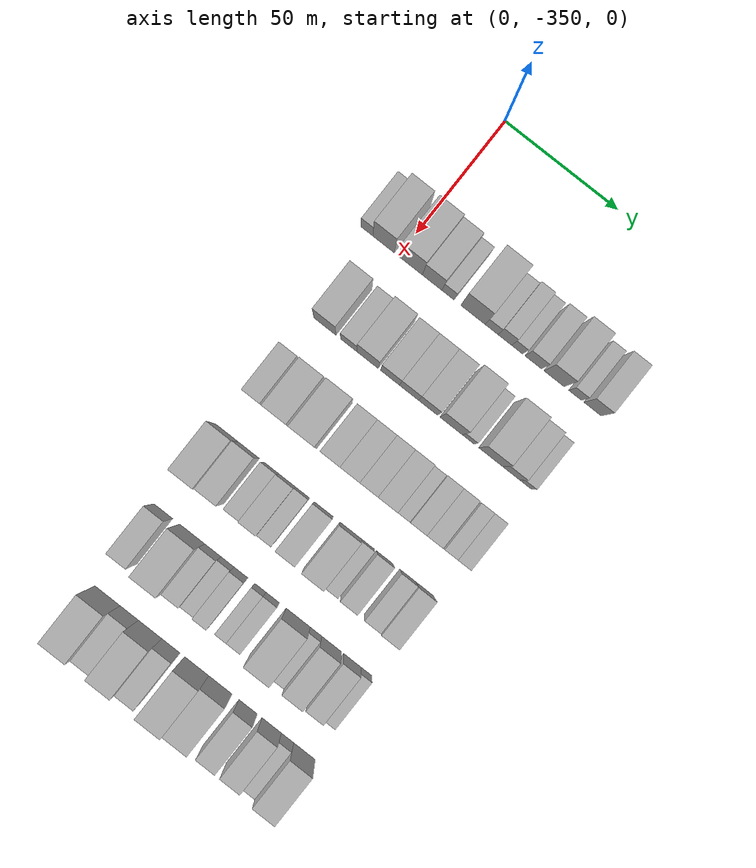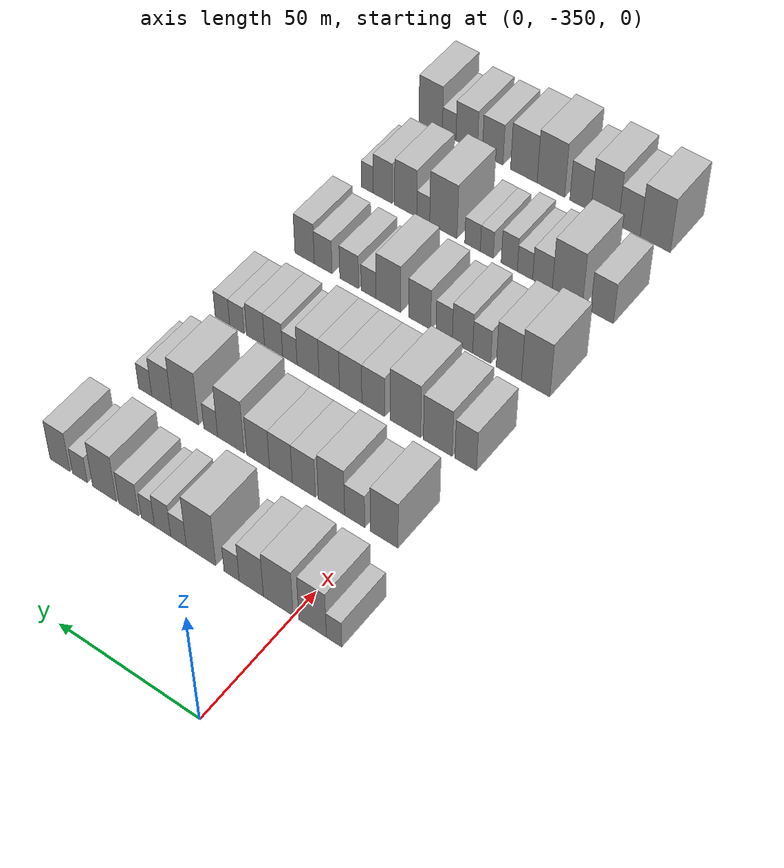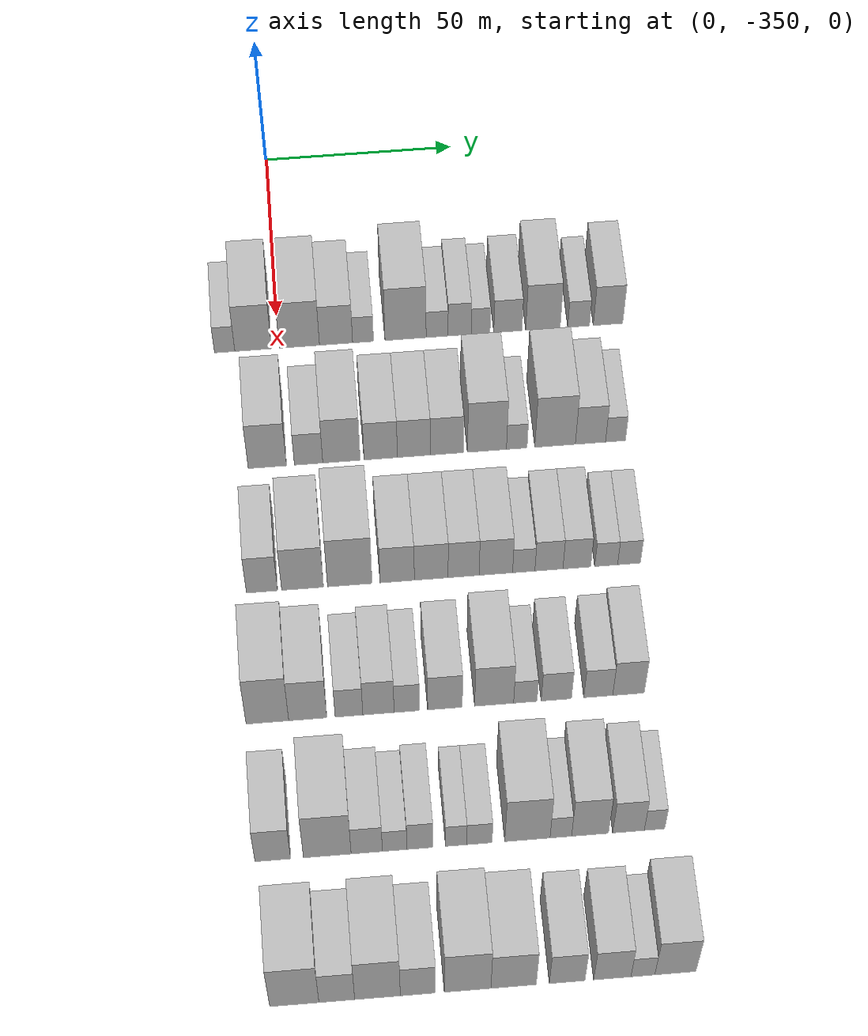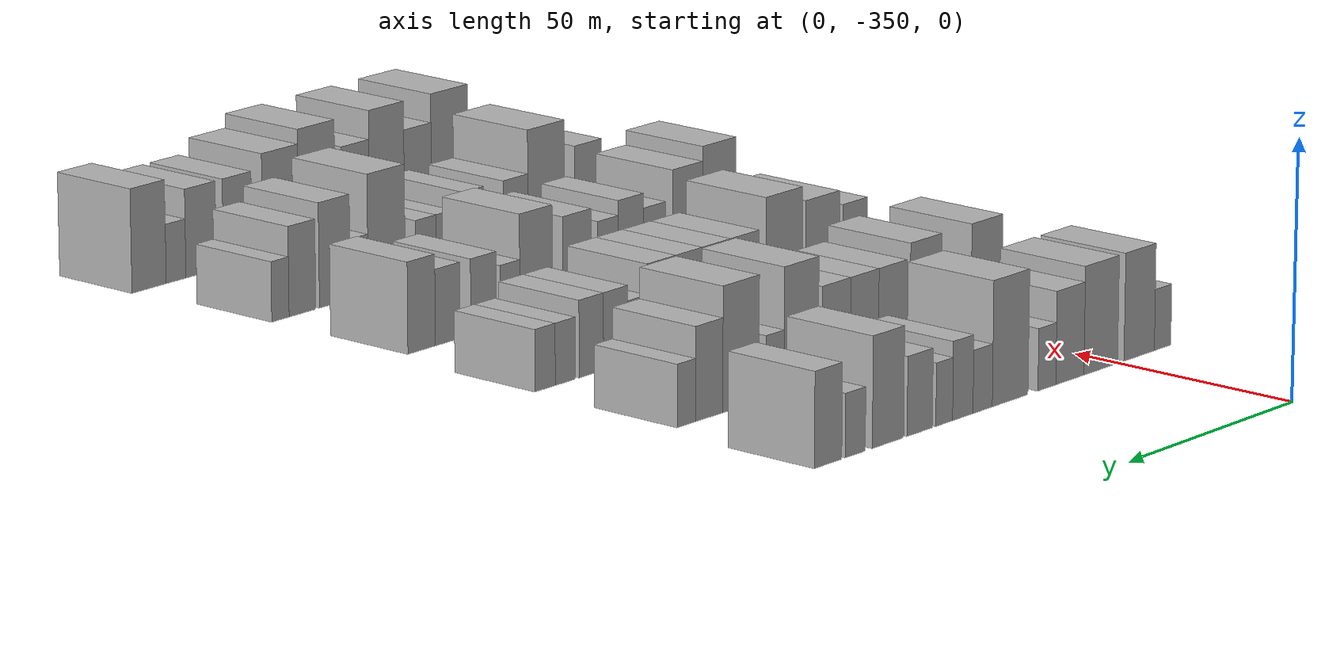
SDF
<sdf version="1.6">
 <world name="default">
  <model name="building_25">
   <static>1</static>
   <pose>50.0000 -363.9228 0 0.000000 0.000000 0.000000</pose>
   <link name="link">
    <pose>0 0 6.00 0 0 0</pose>
    <collision name="collision"><geometry><box><size>20.0000 5.2513 12.0000</size></box></geometry></collision>
    <visual name="visual">
     <cast_shadows>0</cast_shadows>
     <geometry><box><size>20.0000 5.2513 12.0000</size></box></geometry>
     <material>
      <script>
       <uri>model://HANNAS_wall/materials/scripts</uri>
       <uri>model://HANNAS_wall/materials/textures</uri>
       <name>vrc/HANNAS_wall</name>
      </script>
     </material>
    </visual>
   </link>
  </model>
  <model name="building_26">
   <static>1</static>
   <pose>50.0000 -356.5422 0 0.000000 0.000000 0.000000</pose>
   <link name="link">
    <pose>0 0 10.50 0 0 0</pose>
    <collision name="collision"><geometry><box><size>20.0000 9.5100 21.0000</size></box></geometry></collision>
    <visual name="visual">
     <cast_shadows>0</cast_shadows>
     <geometry><box><size>20.0000 9.5100 21.0000</size></box></geometry>
     <material>
      <script>
       <uri>model://HANNAS_wall/materials/scripts</uri>
       <uri>model://HANNAS_wall/materials/textures</uri>
       <name>vrc/HANNAS_wall</name>
      </script>
     </material>
    </visual>
   </link>
  </model>
  <model name="building_27">
   <static>1</static>
   <pose>50.0000 -344.5830 0 0.000000 0.000000 0.000000</pose>
   <link name="link">
    <pose>0 0 10.50 0 0 0</pose>
    <collision name="collision"><geometry><box><size>20.0000 10.4083 21.0000</size></box></geometry></collision>
    <visual name="visual">
     <cast_shadows>0</cast_shadows>
     <geometry><box><size>20.0000 10.4083 21.0000</size></box></geometry>
     <material>
      <script>
       <uri>model://HANNAS_wall/materials/scripts</uri>
       <uri>model://HANNAS_wall/materials/textures</uri>
       <name>vrc/HANNAS_wall</name>
      </script>
     </material>
    </visual>
   </link>
  </model>
  <model name="building_28">
   <static>1</static>
   <pose>50.0000 -335.0815 0 0.000000 0.000000 0.000000</pose>
   <link name="link">
    <pose>0 0 9.00 0 0 0</pose>
    <collision name="collision"><geometry><box><size>20.0000 8.5948 18.0000</size></box></geometry></collision>
    <visual name="visual">
     <cast_shadows>0</cast_shadows>
     <geometry><box><size>20.0000 8.5948 18.0000</size></box></geometry>
     <material>
      <script>
       <uri>model://HANNAS_wall/materials/scripts</uri>
       <uri>model://HANNAS_wall/materials/textures</uri>
       <name>vrc/HANNAS_wall</name>
      </script>
     </material>
    </visual>
   </link>
  </model>
  <model name="building_29">
   <static>1</static>
   <pose>50.0000 -328.0749 0 0.000000 0.000000 0.000000</pose>
   <link name="link">
    <pose>0 0 6.00 0 0 0</pose>
    <collision name="collision"><geometry><box><size>20.0000 5.4185 12.0000</size></box></geometry></collision>
    <visual name="visual">
     <cast_shadows>0</cast_shadows>
     <geometry><box><size>20.0000 5.4185 12.0000</size></box></geometry>
     <material>
      <script>
       <uri>model://HANNAS_wall/materials/scripts</uri>
       <uri>model://HANNAS_wall/materials/textures</uri>
       <name>vrc/HANNAS_wall</name>
      </script>
     </material>
    </visual>
   </link>
  </model>
  <model name="building_30">
   <static>1</static>
   <pose>50.0000 -317.0212 0 0.000000 0.000000 0.000000</pose>
   <link name="link">
    <pose>0 0 12.00 0 0 0</pose>
    <collision name="collision"><geometry><box><size>20.0000 10.6889 24.0000</size></box></geometry></collision>
    <visual name="visual">
     <cast_shadows>0</cast_shadows>
     <geometry><box><size>20.0000 10.6889 24.0000</size></box></geometry>
     <material>
      <script>
       <uri>model://HANNAS_wall/materials/scripts</uri>
       <uri>model://HANNAS_wall/materials/textures</uri>
       <name>vrc/HANNAS_wall</name>
      </script>
     </material>
    </visual>
   </link>
  </model>
  <model name="building_31">
   <static>1</static>
   <pose>50.0000 -308.8232 0 0.000000 0.000000 0.000000</pose>
   <link name="link">
    <pose>0 0 6.00 0 0 0</pose>
    <collision name="collision"><geometry><box><size>20.0000 5.7072 12.0000</size></box></geometry></collision>
    <visual name="visual">
     <cast_shadows>0</cast_shadows>
     <geometry><box><size>20.0000 5.7072 12.0000</size></box></geometry>
     <material>
      <script>
       <uri>model://HANNAS_wall/materials/scripts</uri>
       <uri>model://HANNAS_wall/materials/textures</uri>
       <name>vrc/HANNAS_wall</name>
      </script>
     </material>
    </visual>
   </link>
  </model>
  <model name="building_32">
   <static>1</static>
   <pose>50.0000 -302.9643 0 0.000000 0.000000 0.000000</pose>
   <link name="link">
    <pose>0 0 7.50 0 0 0</pose>
    <collision name="collision"><geometry><box><size>20.0000 6.0104 15.0000</size></box></geometry></collision>
    <visual name="visual">
     <cast_shadows>0</cast_shadows>
     <geometry><box><size>20.0000 6.0104 15.0000</size></box></geometry>
     <material>
      <script>
       <uri>model://HANNAS_wall/materials/scripts</uri>
       <uri>model://HANNAS_wall/materials/textures</uri>
       <name>vrc/HANNAS_wall</name>
      </script>
     </material>
    </visual>
   </link>
  </model>
  <model name="building_33">
   <static>1</static>
   <pose>50.0000 -297.5027 0 0.000000 0.000000 0.000000</pose>
   <link name="link">
    <pose>0 0 6.00 0 0 0</pose>
    <collision name="collision"><geometry><box><size>20.0000 4.9128 12.0000</size></box></geometry></collision>
    <visual name="visual">
     <cast_shadows>0</cast_shadows>
     <geometry><box><size>20.0000 4.9128 12.0000</size></box></geometry>
     <material>
      <script>
       <uri>model://HANNAS_wall/materials/scripts</uri>
       <uri>model://HANNAS_wall/materials/textures</uri>
       <name>vrc/HANNAS_wall</name>
      </script>
     </material>
    </visual>
   </link>
  </model>
  <model name="building_34">
   <static>1</static>
   <pose>50.0000 -290.3812 0 0.000000 0.000000 0.000000</pose>
   <link name="link">
    <pose>0 0 7.50 0 0 0</pose>
    <collision name="collision"><geometry><box><size>20.0000 7.3303 15.0000</size></box></geometry></collision>
    <visual name="visual">
     <cast_shadows>0</cast_shadows>
     <geometry><box><size>20.0000 7.3303 15.0000</size></box></geometry>
     <material>
      <script>
       <uri>model://HANNAS_wall/materials/scripts</uri>
       <uri>model://HANNAS_wall/materials/textures</uri>
       <name>vrc/HANNAS_wall</name>
      </script>
     </material>
    </visual>
   </link>
  </model>
  <model name="building_35">
   <static>1</static>
   <pose>50.0000 -281.2286 0 0.000000 0.000000 0.000000</pose>
   <link name="link">
    <pose>0 0 10.50 0 0 0</pose>
    <collision name="collision"><geometry><box><size>20.0000 8.9748 21.0000</size></box></geometry></collision>
    <visual name="visual">
     <cast_shadows>0</cast_shadows>
     <geometry><box><size>20.0000 8.9748 21.0000</size></box></geometry>
     <material>
      <script>
       <uri>model://HANNAS_wall/materials/scripts</uri>
       <uri>model://HANNAS_wall/materials/textures</uri>
       <name>vrc/HANNAS_wall</name>
      </script>
     </material>
    </visual>
   </link>
  </model>
  <model name="building_36">
   <static>1</static>
   <pose>50.0000 -271.9024 0 0.000000 0.000000 0.000000</pose>
   <link name="link">
    <pose>0 0 6.00 0 0 0</pose>
    <collision name="collision"><geometry><box><size>20.0000 5.6775 12.0000</size></box></geometry></collision>
    <visual name="visual">
     <cast_shadows>0</cast_shadows>
     <geometry><box><size>20.0000 5.6775 12.0000</size></box></geometry>
     <material>
      <script>
       <uri>model://HANNAS_wall/materials/scripts</uri>
       <uri>model://HANNAS_wall/materials/textures</uri>
       <name>vrc/HANNAS_wall</name>
      </script>
     </material>
    </visual>
   </link>
  </model>
  <model name="building_37">
   <static>1</static>
   <pose>50.0000 -264.2198 0 0.000000 0.000000 0.000000</pose>
   <link name="link">
    <pose>0 0 9.00 0 0 0</pose>
    <collision name="collision"><geometry><box><size>20.0000 7.6877 18.0000</size></box></geometry></collision>
    <visual name="visual">
     <cast_shadows>0</cast_shadows>
     <geometry><box><size>20.0000 7.6877 18.0000</size></box></geometry>
     <material>
      <script>
       <uri>model://HANNAS_wall/materials/scripts</uri>
       <uri>model://HANNAS_wall/materials/textures</uri>
       <name>vrc/HANNAS_wall</name>
      </script>
     </material>
    </visual>
   </link>
  </model>
  <model name="building_149">
   <static>1</static>
   <pose>85.0000 -354.7512 0 0.000000 0.000000 0.000000</pose>
   <link name="link">
    <pose>0 0 10.50 0 0 0</pose>
    <collision name="collision"><geometry><box><size>20.0000 9.6623 21.0000</size></box></geometry></collision>
    <visual name="visual">
     <cast_shadows>0</cast_shadows>
     <geometry><box><size>20.0000 9.6623 21.0000</size></box></geometry>
     <material>
      <script>
       <uri>model://HANNAS_wall/materials/scripts</uri>
       <uri>model://HANNAS_wall/materials/textures</uri>
       <name>vrc/HANNAS_wall</name>
      </script>
     </material>
    </visual>
   </link>
  </model>
  <model name="building_150">
   <static>1</static>
   <pose>85.0000 -344.3441 0 0.000000 0.000000 0.000000</pose>
   <link name="link">
    <pose>0 0 7.50 0 0 0</pose>
    <collision name="collision"><geometry><box><size>20.0000 7.1519 15.0000</size></box></geometry></collision>
    <visual name="visual">
     <cast_shadows>0</cast_shadows>
     <geometry><box><size>20.0000 7.1519 15.0000</size></box></geometry>
     <material>
      <script>
       <uri>model://HANNAS_wall/materials/scripts</uri>
       <uri>model://HANNAS_wall/materials/textures</uri>
       <name>vrc/HANNAS_wall</name>
      </script>
     </material>
    </visual>
   </link>
  </model>
  <model name="building_151">
   <static>1</static>
   <pose>85.0000 -336.0399 0 0.000000 0.000000 0.000000</pose>
   <link name="link">
    <pose>0 0 10.50 0 0 0</pose>
    <collision name="collision"><geometry><box><size>20.0000 9.4566 21.0000</size></box></geometry></collision>
    <visual name="visual">
     <cast_shadows>0</cast_shadows>
     <geometry><box><size>20.0000 9.4566 21.0000</size></box></geometry>
     <material>
      <script>
       <uri>model://HANNAS_wall/materials/scripts</uri>
       <uri>model://HANNAS_wall/materials/textures</uri>
       <name>vrc/HANNAS_wall</name>
      </script>
     </material>
    </visual>
   </link>
  </model>
  <model name="building_152">
   <static>1</static>
   <pose>85.0000 -326.0976 0 0.000000 0.000000 0.000000</pose>
   <link name="link">
    <pose>0 0 9.00 0 0 0</pose>
    <collision name="collision"><geometry><box><size>20.0000 8.4279 18.0000</size></box></geometry></collision>
    <visual name="visual">
     <cast_shadows>0</cast_shadows>
     <geometry><box><size>20.0000 8.4279 18.0000</size></box></geometry>
     <material>
      <script>
       <uri>model://HANNAS_wall/materials/scripts</uri>
       <uri>model://HANNAS_wall/materials/textures</uri>
       <name>vrc/HANNAS_wall</name>
      </script>
     </material>
    </visual>
   </link>
  </model>
  <model name="building_153">
   <static>1</static>
   <pose>85.0000 -317.7105 0 0.000000 0.000000 0.000000</pose>
   <link name="link">
    <pose>0 0 9.00 0 0 0</pose>
    <collision name="collision"><geometry><box><size>20.0000 8.3462 18.0000</size></box></geometry></collision>
    <visual name="visual">
     <cast_shadows>0</cast_shadows>
     <geometry><box><size>20.0000 8.3462 18.0000</size></box></geometry>
     <material>
      <script>
       <uri>model://HANNAS_wall/materials/scripts</uri>
       <uri>model://HANNAS_wall/materials/textures</uri>
       <name>vrc/HANNAS_wall</name>
      </script>
     </material>
    </visual>
   </link>
  </model>
  <model name="building_154">
   <static>1</static>
   <pose>85.0000 -309.3251 0 0.000000 0.000000 0.000000</pose>
   <link name="link">
    <pose>0 0 9.00 0 0 0</pose>
    <collision name="collision"><geometry><box><size>20.0000 8.4247 18.0000</size></box></geometry></collision>
    <visual name="visual">
     <cast_shadows>0</cast_shadows>
     <geometry><box><size>20.0000 8.4247 18.0000</size></box></geometry>
     <material>
      <script>
       <uri>model://HANNAS_wall/materials/scripts</uri>
       <uri>model://HANNAS_wall/materials/textures</uri>
       <name>vrc/HANNAS_wall</name>
      </script>
     </material>
    </visual>
   </link>
  </model>
  <model name="building_155">
   <static>1</static>
   <pose>85.0000 -299.1536 0 0.000000 0.000000 0.000000</pose>
   <link name="link">
    <pose>0 0 12.00 0 0 0</pose>
    <collision name="collision"><geometry><box><size>20.0000 9.9182 24.0000</size></box></geometry></collision>
    <visual name="visual">
     <cast_shadows>0</cast_shadows>
     <geometry><box><size>20.0000 9.9182 24.0000</size></box></geometry>
     <material>
      <script>
       <uri>model://HANNAS_wall/materials/scripts</uri>
       <uri>model://HANNAS_wall/materials/textures</uri>
       <name>vrc/HANNAS_wall</name>
      </script>
     </material>
    </visual>
   </link>
  </model>
  <model name="building_156">
   <static>1</static>
   <pose>85.0000 -291.5735 0 0.000000 0.000000 0.000000</pose>
   <link name="link">
    <pose>0 0 6.00 0 0 0</pose>
    <collision name="collision"><geometry><box><size>20.0000 5.2421 12.0000</size></box></geometry></collision>
    <visual name="visual">
     <cast_shadows>0</cast_shadows>
     <geometry><box><size>20.0000 5.2421 12.0000</size></box></geometry>
     <material>
      <script>
       <uri>model://HANNAS_wall/materials/scripts</uri>
       <uri>model://HANNAS_wall/materials/textures</uri>
       <name>vrc/HANNAS_wall</name>
      </script>
     </material>
    </visual>
   </link>
  </model>
  <model name="building_157">
   <static>1</static>
   <pose>85.0000 -281.7998 0 0.000000 0.000000 0.000000</pose>
   <link name="link">
    <pose>0 0 12.00 0 0 0</pose>
    <collision name="collision"><geometry><box><size>20.0000 10.3053 24.0000</size></box></geometry></collision>
    <visual name="visual">
     <cast_shadows>0</cast_shadows>
     <geometry><box><size>20.0000 10.3053 24.0000</size></box></geometry>
     <material>
      <script>
       <uri>model://HANNAS_wall/materials/scripts</uri>
       <uri>model://HANNAS_wall/materials/textures</uri>
       <name>vrc/HANNAS_wall</name>
      </script>
     </material>
    </visual>
   </link>
  </model>
  <model name="building_158">
   <static>1</static>
   <pose>85.0000 -272.7995 0 0.000000 0.000000 0.000000</pose>
   <link name="link">
    <pose>0 0 9.00 0 0 0</pose>
    <collision name="collision"><geometry><box><size>20.0000 7.6952 18.0000</size></box></geometry></collision>
    <visual name="visual">
     <cast_shadows>0</cast_shadows>
     <geometry><box><size>20.0000 7.6952 18.0000</size></box></geometry>
     <material>
      <script>
       <uri>model://HANNAS_wall/materials/scripts</uri>
       <uri>model://HANNAS_wall/materials/textures</uri>
       <name>vrc/HANNAS_wall</name>
      </script>
     </material>
    </visual>
   </link>
  </model>
  <model name="building_159">
   <static>1</static>
   <pose>85.0000 -266.4081 0 0.000000 0.000000 0.000000</pose>
   <link name="link">
    <pose>0 0 6.00 0 0 0</pose>
    <collision name="collision"><geometry><box><size>20.0000 5.0877 12.0000</size></box></geometry></collision>
    <visual name="visual">
     <cast_shadows>0</cast_shadows>
     <geometry><box><size>20.0000 5.0877 12.0000</size></box></geometry>
     <material>
      <script>
       <uri>model://HANNAS_wall/materials/scripts</uri>
       <uri>model://HANNAS_wall/materials/textures</uri>
       <name>vrc/HANNAS_wall</name>
      </script>
     </material>
    </visual>
   </link>
  </model>
  <model name="building_278">
   <static>1</static>
   <pose>120.0000 -357.9527 0 0.000000 0.000000 0.000000</pose>
   <link name="link">
    <pose>0 0 9.00 0 0 0</pose>
    <collision name="collision"><geometry><box><size>20.0000 7.6664 18.0000</size></box></geometry></collision>
    <visual name="visual">
     <cast_shadows>0</cast_shadows>
     <geometry><box><size>20.0000 7.6664 18.0000</size></box></geometry>
     <material>
      <script>
       <uri>model://HANNAS_wall/materials/scripts</uri>
       <uri>model://HANNAS_wall/materials/textures</uri>
       <name>vrc/HANNAS_wall</name>
      </script>
     </material>
    </visual>
   </link>
  </model>
  <model name="building_279">
   <static>1</static>
   <pose>120.0000 -347.9741 0 0.000000 0.000000 0.000000</pose>
   <link name="link">
    <pose>0 0 10.50 0 0 0</pose>
    <collision name="collision"><geometry><box><size>20.0000 10.2909 21.0000</size></box></geometry></collision>
    <visual name="visual">
     <cast_shadows>0</cast_shadows>
     <geometry><box><size>20.0000 10.2909 21.0000</size></box></geometry>
     <material>
      <script>
       <uri>model://HANNAS_wall/materials/scripts</uri>
       <uri>model://HANNAS_wall/materials/textures</uri>
       <name>vrc/HANNAS_wall</name>
      </script>
     </material>
    </visual>
   </link>
  </model>
  <model name="building_280">
   <static>1</static>
   <pose>120.0000 -336.3413 0 0.000000 0.000000 0.000000</pose>
   <link name="link">
    <pose>0 0 12.00 0 0 0</pose>
    <collision name="collision"><geometry><box><size>20.0000 10.9747 24.0000</size></box></geometry></collision>
    <visual name="visual">
     <cast_shadows>0</cast_shadows>
     <geometry><box><size>20.0000 10.9747 24.0000</size></box></geometry>
     <material>
      <script>
       <uri>model://HANNAS_wall/materials/scripts</uri>
       <uri>model://HANNAS_wall/materials/textures</uri>
       <name>vrc/HANNAS_wall</name>
      </script>
     </material>
    </visual>
   </link>
  </model>
  <model name="building_281">
   <static>1</static>
   <pose>120.0000 -324.6284 0 0.000000 0.000000 0.000000</pose>
   <link name="link">
    <pose>0 0 9.00 0 0 0</pose>
    <collision name="collision"><geometry><box><size>20.0000 8.4511 18.0000</size></box></geometry></collision>
    <visual name="visual">
     <cast_shadows>0</cast_shadows>
     <geometry><box><size>20.0000 8.4511 18.0000</size></box></geometry>
     <material>
      <script>
       <uri>model://HANNAS_wall/materials/scripts</uri>
       <uri>model://HANNAS_wall/materials/textures</uri>
       <name>vrc/HANNAS_wall</name>
      </script>
     </material>
    </visual>
   </link>
  </model>
  <model name="building_282">
   <static>1</static>
   <pose>120.0000 -316.2403 0 0.000000 0.000000 0.000000</pose>
   <link name="link">
    <pose>0 0 9.00 0 0 0</pose>
    <collision name="collision"><geometry><box><size>20.0000 8.3251 18.0000</size></box></geometry></collision>
    <visual name="visual">
     <cast_shadows>0</cast_shadows>
     <geometry><box><size>20.0000 8.3251 18.0000</size></box></geometry>
     <material>
      <script>
       <uri>model://HANNAS_wall/materials/scripts</uri>
       <uri>model://HANNAS_wall/materials/textures</uri>
       <name>vrc/HANNAS_wall</name>
      </script>
     </material>
    </visual>
   </link>
  </model>
  <model name="building_283">
   <static>1</static>
   <pose>120.0000 -308.2414 0 0.000000 0.000000 0.000000</pose>
   <link name="link">
    <pose>0 0 9.00 0 0 0</pose>
    <collision name="collision"><geometry><box><size>20.0000 7.6728 18.0000</size></box></geometry></collision>
    <visual name="visual">
     <cast_shadows>0</cast_shadows>
     <geometry><box><size>20.0000 7.6728 18.0000</size></box></geometry>
     <material>
      <script>
       <uri>model://HANNAS_wall/materials/scripts</uri>
       <uri>model://HANNAS_wall/materials/textures</uri>
       <name>vrc/HANNAS_wall</name>
      </script>
     </material>
    </visual>
   </link>
  </model>
  <model name="building_284">
   <static>1</static>
   <pose>120.0000 -300.2578 0 0.000000 0.000000 0.000000</pose>
   <link name="link">
    <pose>0 0 9.00 0 0 0</pose>
    <collision name="collision"><geometry><box><size>20.0000 8.2945 18.0000</size></box></geometry></collision>
    <visual name="visual">
     <cast_shadows>0</cast_shadows>
     <geometry><box><size>20.0000 8.2945 18.0000</size></box></geometry>
     <material>
      <script>
       <uri>model://HANNAS_wall/materials/scripts</uri>
       <uri>model://HANNAS_wall/materials/textures</uri>
       <name>vrc/HANNAS_wall</name>
      </script>
     </material>
    </visual>
   </link>
  </model>
  <model name="building_285">
   <static>1</static>
   <pose>120.0000 -293.3405 0 0.000000 0.000000 0.000000</pose>
   <link name="link">
    <pose>0 0 6.00 0 0 0</pose>
    <collision name="collision"><geometry><box><size>20.0000 5.5401 12.0000</size></box></geometry></collision>
    <visual name="visual">
     <cast_shadows>0</cast_shadows>
     <geometry><box><size>20.0000 5.5401 12.0000</size></box></geometry>
     <material>
      <script>
       <uri>model://HANNAS_wall/materials/scripts</uri>
       <uri>model://HANNAS_wall/materials/textures</uri>
       <name>vrc/HANNAS_wall</name>
      </script>
     </material>
    </visual>
   </link>
  </model>
  <model name="building_286">
   <static>1</static>
   <pose>120.0000 -287.0924 0 0.000000 0.000000 0.000000</pose>
   <link name="link">
    <pose>0 0 7.50 0 0 0</pose>
    <collision name="collision"><geometry><box><size>20.0000 6.9560 15.0000</size></box></geometry></collision>
    <visual name="visual">
     <cast_shadows>0</cast_shadows>
     <geometry><box><size>20.0000 6.9560 15.0000</size></box></geometry>
     <material>
      <script>
       <uri>model://HANNAS_wall/materials/scripts</uri>
       <uri>model://HANNAS_wall/materials/textures</uri>
       <name>vrc/HANNAS_wall</name>
      </script>
     </material>
    </visual>
   </link>
  </model>
  <model name="building_287">
   <static>1</static>
   <pose>120.0000 -280.1640 0 0.000000 0.000000 0.000000</pose>
   <link name="link">
    <pose>0 0 7.50 0 0 0</pose>
    <collision name="collision"><geometry><box><size>20.0000 6.9010 15.0000</size></box></geometry></collision>
    <visual name="visual">
     <cast_shadows>0</cast_shadows>
     <geometry><box><size>20.0000 6.9010 15.0000</size></box></geometry>
     <material>
      <script>
       <uri>model://HANNAS_wall/materials/scripts</uri>
       <uri>model://HANNAS_wall/materials/textures</uri>
       <name>vrc/HANNAS_wall</name>
      </script>
     </material>
    </visual>
   </link>
  </model>
  <model name="building_288">
   <static>1</static>
   <pose>120.0000 -272.8723 0 0.000000 0.000000 0.000000</pose>
   <link name="link">
    <pose>0 0 6.00 0 0 0</pose>
    <collision name="collision"><geometry><box><size>20.0000 5.6824 12.0000</size></box></geometry></collision>
    <visual name="visual">
     <cast_shadows>0</cast_shadows>
     <geometry><box><size>20.0000 5.6824 12.0000</size></box></geometry>
     <material>
      <script>
       <uri>model://HANNAS_wall/materials/scripts</uri>
       <uri>model://HANNAS_wall/materials/textures</uri>
       <name>vrc/HANNAS_wall</name>
      </script>
     </material>
    </visual>
   </link>
  </model>
  <model name="building_289">
   <static>1</static>
   <pose>120.0000 -267.1996 0 0.000000 0.000000 0.000000</pose>
   <link name="link">
    <pose>0 0 6.00 0 0 0</pose>
    <collision name="collision"><geometry><box><size>20.0000 5.6628 12.0000</size></box></geometry></collision>
    <visual name="visual">
     <cast_shadows>0</cast_shadows>
     <geometry><box><size>20.0000 5.6628 12.0000</size></box></geometry>
     <material>
      <script>
       <uri>model://HANNAS_wall/materials/scripts</uri>
       <uri>model://HANNAS_wall/materials/textures</uri>
       <name>vrc/HANNAS_wall</name>
      </script>
     </material>
    </visual>
   </link>
  </model>
  <model name="building_403">
   <static>1</static>
   <pose>155.0000 -358.5116 0 0.000000 0.000000 0.000000</pose>
   <link name="link">
    <pose>0 0 12.00 0 0 0</pose>
    <collision name="collision"><geometry><box><size>20.0000 10.1989 24.0000</size></box></geometry></collision>
    <visual name="visual">
     <cast_shadows>0</cast_shadows>
     <geometry><box><size>20.0000 10.1989 24.0000</size></box></geometry>
     <material>
      <script>
       <uri>model://HANNAS_wall/materials/scripts</uri>
       <uri>model://HANNAS_wall/materials/textures</uri>
       <name>vrc/HANNAS_wall</name>
      </script>
     </material>
    </visual>
   </link>
  </model>
  <model name="building_404">
   <static>1</static>
   <pose>155.0000 -348.8406 0 0.000000 0.000000 0.000000</pose>
   <link name="link">
    <pose>0 0 10.50 0 0 0</pose>
    <collision name="collision"><geometry><box><size>20.0000 9.1431 21.0000</size></box></geometry></collision>
    <visual name="visual">
     <cast_shadows>0</cast_shadows>
     <geometry><box><size>20.0000 9.1431 21.0000</size></box></geometry>
     <material>
      <script>
       <uri>model://HANNAS_wall/materials/scripts</uri>
       <uri>model://HANNAS_wall/materials/textures</uri>
       <name>vrc/HANNAS_wall</name>
      </script>
     </material>
    </visual>
   </link>
  </model>
  <model name="building_405">
   <static>1</static>
   <pose>155.0000 -338.9535 0 0.000000 0.000000 0.000000</pose>
   <link name="link">
    <pose>0 0 7.50 0 0 0</pose>
    <collision name="collision"><geometry><box><size>20.0000 6.6310 15.0000</size></box></geometry></collision>
    <visual name="visual">
     <cast_shadows>0</cast_shadows>
     <geometry><box><size>20.0000 6.6310 15.0000</size></box></geometry>
     <material>
      <script>
       <uri>model://HANNAS_wall/materials/scripts</uri>
       <uri>model://HANNAS_wall/materials/textures</uri>
       <name>vrc/HANNAS_wall</name>
      </script>
     </material>
    </visual>
   </link>
  </model>
  <model name="building_406">
   <static>1</static>
   <pose>155.0000 -331.8794 0 0.000000 0.000000 0.000000</pose>
   <link name="link">
    <pose>0 0 9.00 0 0 0</pose>
    <collision name="collision"><geometry><box><size>20.0000 7.5173 18.0000</size></box></geometry></collision>
    <visual name="visual">
     <cast_shadows>0</cast_shadows>
     <geometry><box><size>20.0000 7.5173 18.0000</size></box></geometry>
     <material>
      <script>
       <uri>model://HANNAS_wall/materials/scripts</uri>
       <uri>model://HANNAS_wall/materials/textures</uri>
       <name>vrc/HANNAS_wall</name>
      </script>
     </material>
    </visual>
   </link>
  </model>
  <model name="building_407">
   <static>1</static>
   <pose>155.0000 -325.0801 0 0.000000 0.000000 0.000000</pose>
   <link name="link">
    <pose>0 0 7.50 0 0 0</pose>
    <collision name="collision"><geometry><box><size>20.0000 6.0812 15.0000</size></box></geometry></collision>
    <visual name="visual">
     <cast_shadows>0</cast_shadows>
     <geometry><box><size>20.0000 6.0812 15.0000</size></box></geometry>
     <material>
      <script>
       <uri>model://HANNAS_wall/materials/scripts</uri>
       <uri>model://HANNAS_wall/materials/textures</uri>
       <name>vrc/HANNAS_wall</name>
      </script>
     </material>
    </visual>
   </link>
  </model>
  <model name="building_408">
   <static>1</static>
   <pose>155.0000 -315.8828 0 0.000000 0.000000 0.000000</pose>
   <link name="link">
    <pose>0 0 9.00 0 0 0</pose>
    <collision name="collision"><geometry><box><size>20.0000 8.3134 18.0000</size></box></geometry></collision>
    <visual name="visual">
     <cast_shadows>0</cast_shadows>
     <geometry><box><size>20.0000 8.3134 18.0000</size></box></geometry>
     <material>
      <script>
       <uri>model://HANNAS_wall/materials/scripts</uri>
       <uri>model://HANNAS_wall/materials/textures</uri>
       <name>vrc/HANNAS_wall</name>
      </script>
     </material>
    </visual>
   </link>
  </model>
  <model name="building_409">
   <static>1</static>
   <pose>155.0000 -304.0315 0 0.000000 0.000000 0.000000</pose>
   <link name="link">
    <pose>0 0 10.50 0 0 0</pose>
    <collision name="collision"><geometry><box><size>20.0000 9.3893 21.0000</size></box></geometry></collision>
    <visual name="visual">
     <cast_shadows>0</cast_shadows>
     <geometry><box><size>20.0000 9.3893 21.0000</size></box></geometry>
     <material>
      <script>
       <uri>model://HANNAS_wall/materials/scripts</uri>
       <uri>model://HANNAS_wall/materials/textures</uri>
       <name>vrc/HANNAS_wall</name>
      </script>
     </material>
    </visual>
   </link>
  </model>
  <model name="building_410">
   <static>1</static>
   <pose>155.0000 -296.5074 0 0.000000 0.000000 0.000000</pose>
   <link name="link">
    <pose>0 0 6.00 0 0 0</pose>
    <collision name="collision"><geometry><box><size>20.0000 5.6588 12.0000</size></box></geometry></collision>
    <visual name="visual">
     <cast_shadows>0</cast_shadows>
     <geometry><box><size>20.0000 5.6588 12.0000</size></box></geometry>
     <material>
      <script>
       <uri>model://HANNAS_wall/materials/scripts</uri>
       <uri>model://HANNAS_wall/materials/textures</uri>
       <name>vrc/HANNAS_wall</name>
      </script>
     </material>
    </visual>
   </link>
  </model>
  <model name="building_411">
   <static>1</static>
   <pose>155.0000 -289.0182 0 0.000000 0.000000 0.000000</pose>
   <link name="link">
    <pose>0 0 7.50 0 0 0</pose>
    <collision name="collision"><geometry><box><size>20.0000 7.3196 15.0000</size></box></geometry></collision>
    <visual name="visual">
     <cast_shadows>0</cast_shadows>
     <geometry><box><size>20.0000 7.3196 15.0000</size></box></geometry>
     <material>
      <script>
       <uri>model://HANNAS_wall/materials/scripts</uri>
       <uri>model://HANNAS_wall/materials/textures</uri>
       <name>vrc/HANNAS_wall</name>
      </script>
     </material>
    </visual>
   </link>
  </model>
  <model name="building_412">
   <static>1</static>
   <pose>155.0000 -278.8722 0 0.000000 0.000000 0.000000</pose>
   <link name="link">
    <pose>0 0 7.50 0 0 0</pose>
    <collision name="collision"><geometry><box><size>20.0000 6.9723 15.0000</size></box></geometry></collision>
    <visual name="visual">
     <cast_shadows>0</cast_shadows>
     <geometry><box><size>20.0000 6.9723 15.0000</size></box></geometry>
     <material>
      <script>
       <uri>model://HANNAS_wall/materials/scripts</uri>
       <uri>model://HANNAS_wall/materials/textures</uri>
       <name>vrc/HANNAS_wall</name>
      </script>
     </material>
    </visual>
   </link>
  </model>
  <model name="building_413">
   <static>1</static>
   <pose>155.0000 -271.5606 0 0.000000 0.000000 0.000000</pose>
   <link name="link">
    <pose>0 0 9.00 0 0 0</pose>
    <collision name="collision"><geometry><box><size>20.0000 7.6511 18.0000</size></box></geometry></collision>
    <visual name="visual">
     <cast_shadows>0</cast_shadows>
     <geometry><box><size>20.0000 7.6511 18.0000</size></box></geometry>
     <material>
      <script>
       <uri>model://HANNAS_wall/materials/scripts</uri>
       <uri>model://HANNAS_wall/materials/textures</uri>
       <name>vrc/HANNAS_wall</name>
      </script>
     </material>
    </visual>
   </link>
  </model>
  <model name="building_534">
   <static>1</static>
   <pose>190.0000 -359.1353 0 0.000000 0.000000 0.000000</pose>
   <link name="link">
    <pose>0 0 9.00 0 0 0</pose>
    <collision name="collision"><geometry><box><size>20.0000 8.3015 18.0000</size></box></geometry></collision>
    <visual name="visual">
     <cast_shadows>0</cast_shadows>
     <geometry><box><size>20.0000 8.3015 18.0000</size></box></geometry>
     <material>
      <script>
       <uri>model://HANNAS_wall/materials/scripts</uri>
       <uri>model://HANNAS_wall/materials/textures</uri>
       <name>vrc/HANNAS_wall</name>
      </script>
     </material>
    </visual>
   </link>
  </model>
  <model name="building_535">
   <static>1</static>
   <pose>190.0000 -346.4287 0 0.000000 0.000000 0.000000</pose>
   <link name="link">
    <pose>0 0 12.00 0 0 0</pose>
    <collision name="collision"><geometry><box><size>20.0000 11.1116 24.0000</size></box></geometry></collision>
    <visual name="visual">
     <cast_shadows>0</cast_shadows>
     <geometry><box><size>20.0000 11.1116 24.0000</size></box></geometry>
     <material>
      <script>
       <uri>model://HANNAS_wall/materials/scripts</uri>
       <uri>model://HANNAS_wall/materials/textures</uri>
       <name>vrc/HANNAS_wall</name>
      </script>
     </material>
    </visual>
   </link>
  </model>
  <model name="building_536">
   <static>1</static>
   <pose>190.0000 -337.2230 0 0.000000 0.000000 0.000000</pose>
   <link name="link">
    <pose>0 0 7.50 0 0 0</pose>
    <collision name="collision"><geometry><box><size>20.0000 7.2998 15.0000</size></box></geometry></collision>
    <visual name="visual">
     <cast_shadows>0</cast_shadows>
     <geometry><box><size>20.0000 7.2998 15.0000</size></box></geometry>
     <material>
      <script>
       <uri>model://HANNAS_wall/materials/scripts</uri>
       <uri>model://HANNAS_wall/materials/textures</uri>
       <name>vrc/HANNAS_wall</name>
      </script>
     </material>
    </visual>
   </link>
  </model>
  <model name="building_537">
   <static>1</static>
   <pose>190.0000 -330.7055 0 0.000000 0.000000 0.000000</pose>
   <link name="link">
    <pose>0 0 6.00 0 0 0</pose>
    <collision name="collision"><geometry><box><size>20.0000 5.7354 12.0000</size></box></geometry></collision>
    <visual name="visual">
     <cast_shadows>0</cast_shadows>
     <geometry><box><size>20.0000 5.7354 12.0000</size></box></geometry>
     <material>
      <script>
       <uri>model://HANNAS_wall/materials/scripts</uri>
       <uri>model://HANNAS_wall/materials/textures</uri>
       <name>vrc/HANNAS_wall</name>
      </script>
     </material>
    </visual>
   </link>
  </model>
  <model name="building_538">
   <static>1</static>
   <pose>190.0000 -324.8027 0 0.000000 0.000000 0.000000</pose>
   <link name="link">
    <pose>0 0 7.50 0 0 0</pose>
    <collision name="collision"><geometry><box><size>20.0000 6.0702 15.0000</size></box></geometry></collision>
    <visual name="visual">
     <cast_shadows>0</cast_shadows>
     <geometry><box><size>20.0000 6.0702 15.0000</size></box></geometry>
     <material>
      <script>
       <uri>model://HANNAS_wall/materials/scripts</uri>
       <uri>model://HANNAS_wall/materials/textures</uri>
       <name>vrc/HANNAS_wall</name>
      </script>
     </material>
    </visual>
   </link>
  </model>
  <model name="building_539">
   <static>1</static>
   <pose>190.0000 -316.2924 0 0.000000 0.000000 0.000000</pose>
   <link name="link">
    <pose>0 0 6.00 0 0 0</pose>
    <collision name="collision"><geometry><box><size>20.0000 4.9504 12.0000</size></box></geometry></collision>
    <visual name="visual">
     <cast_shadows>0</cast_shadows>
     <geometry><box><size>20.0000 4.9504 12.0000</size></box></geometry>
     <material>
      <script>
       <uri>model://HANNAS_wall/materials/scripts</uri>
       <uri>model://HANNAS_wall/materials/textures</uri>
       <name>vrc/HANNAS_wall</name>
      </script>
     </material>
    </visual>
   </link>
  </model>
  <model name="building_540">
   <static>1</static>
   <pose>190.0000 -310.8480 0 0.000000 0.000000 0.000000</pose>
   <link name="link">
    <pose>0 0 6.00 0 0 0</pose>
    <collision name="collision"><geometry><box><size>20.0000 5.9384 12.0000</size></box></geometry></collision>
    <visual name="visual">
     <cast_shadows>0</cast_shadows>
     <geometry><box><size>20.0000 5.9384 12.0000</size></box></geometry>
     <material>
      <script>
       <uri>model://HANNAS_wall/materials/scripts</uri>
       <uri>model://HANNAS_wall/materials/textures</uri>
       <name>vrc/HANNAS_wall</name>
      </script>
     </material>
    </visual>
   </link>
  </model>
  <model name="building_541">
   <static>1</static>
   <pose>190.0000 -299.5676 0 0.000000 0.000000 0.000000</pose>
   <link name="link">
    <pose>0 0 12.00 0 0 0</pose>
    <collision name="collision"><geometry><box><size>20.0000 10.6223 24.0000</size></box></geometry></collision>
    <visual name="visual">
     <cast_shadows>0</cast_shadows>
     <geometry><box><size>20.0000 10.6223 24.0000</size></box></geometry>
     <material>
      <script>
       <uri>model://HANNAS_wall/materials/scripts</uri>
       <uri>model://HANNAS_wall/materials/textures</uri>
       <name>vrc/HANNAS_wall</name>
      </script>
     </material>
    </visual>
   </link>
  </model>
  <model name="building_542">
   <static>1</static>
   <pose>190.0000 -291.7260 0 0.000000 0.000000 0.000000</pose>
   <link name="link">
    <pose>0 0 6.00 0 0 0</pose>
    <collision name="collision"><geometry><box><size>20.0000 5.0610 12.0000</size></box></geometry></collision>
    <visual name="visual">
     <cast_shadows>0</cast_shadows>
     <geometry><box><size>20.0000 5.0610 12.0000</size></box></geometry>
     <material>
      <script>
       <uri>model://HANNAS_wall/materials/scripts</uri>
       <uri>model://HANNAS_wall/materials/textures</uri>
       <name>vrc/HANNAS_wall</name>
      </script>
     </material>
    </visual>
   </link>
  </model>
  <model name="building_543">
   <static>1</static>
   <pose>190.0000 -284.8534 0 0.000000 0.000000 0.000000</pose>
   <link name="link">
    <pose>0 0 10.50 0 0 0</pose>
    <collision name="collision"><geometry><box><size>20.0000 8.6843 21.0000</size></box></geometry></collision>
    <visual name="visual">
     <cast_shadows>0</cast_shadows>
     <geometry><box><size>20.0000 8.6843 21.0000</size></box></geometry>
     <material>
      <script>
       <uri>model://HANNAS_wall/materials/scripts</uri>
       <uri>model://HANNAS_wall/materials/textures</uri>
       <name>vrc/HANNAS_wall</name>
      </script>
     </material>
    </visual>
   </link>
  </model>
  <model name="building_544">
   <static>1</static>
   <pose>190.0000 -275.7793 0 0.000000 0.000000 0.000000</pose>
   <link name="link">
    <pose>0 0 9.00 0 0 0</pose>
    <collision name="collision"><geometry><box><size>20.0000 7.4639 18.0000</size></box></geometry></collision>
    <visual name="visual">
     <cast_shadows>0</cast_shadows>
     <geometry><box><size>20.0000 7.4639 18.0000</size></box></geometry>
     <material>
      <script>
       <uri>model://HANNAS_wall/materials/scripts</uri>
       <uri>model://HANNAS_wall/materials/textures</uri>
       <name>vrc/HANNAS_wall</name>
      </script>
     </material>
    </visual>
   </link>
  </model>
  <model name="building_545">
   <static>1</static>
   <pose>190.0000 -269.6471 0 0.000000 0.000000 0.000000</pose>
   <link name="link">
    <pose>0 0 6.00 0 0 0</pose>
    <collision name="collision"><geometry><box><size>20.0000 4.8006 12.0000</size></box></geometry></collision>
    <visual name="visual">
     <cast_shadows>0</cast_shadows>
     <geometry><box><size>20.0000 4.8006 12.0000</size></box></geometry>
     <material>
      <script>
       <uri>model://HANNAS_wall/materials/scripts</uri>
       <uri>model://HANNAS_wall/materials/textures</uri>
       <name>vrc/HANNAS_wall</name>
      </script>
     </material>
    </visual>
   </link>
  </model>
  <model name="building_660">
   <static>1</static>
   <pose>225.0000 -356.1787 0 0.000000 0.000000 0.000000</pose>
   <link name="link">
    <pose>0 0 12.00 0 0 0</pose>
    <collision name="collision"><geometry><box><size>20.0000 11.1464 24.0000</size></box></geometry></collision>
    <visual name="visual">
     <cast_shadows>0</cast_shadows>
     <geometry><box><size>20.0000 11.1464 24.0000</size></box></geometry>
     <material>
      <script>
       <uri>model://HANNAS_wall/materials/scripts</uri>
       <uri>model://HANNAS_wall/materials/textures</uri>
       <name>vrc/HANNAS_wall</name>
      </script>
     </material>
    </visual>
   </link>
  </model>
  <model name="building_661">
   <static>1</static>
   <pose>225.0000 -346.5479 0 0.000000 0.000000 0.000000</pose>
   <link name="link">
    <pose>0 0 9.00 0 0 0</pose>
    <collision name="collision"><geometry><box><size>20.0000 8.1153 18.0000</size></box></geometry></collision>
    <visual name="visual">
     <cast_shadows>0</cast_shadows>
     <geometry><box><size>20.0000 8.1153 18.0000</size></box></geometry>
     <material>
      <script>
       <uri>model://HANNAS_wall/materials/scripts</uri>
       <uri>model://HANNAS_wall/materials/textures</uri>
       <name>vrc/HANNAS_wall</name>
      </script>
     </material>
    </visual>
   </link>
  </model>
  <model name="building_662">
   <static>1</static>
   <pose>225.0000 -337.3042 0 0.000000 0.000000 0.000000</pose>
   <link name="link">
    <pose>0 0 12.00 0 0 0</pose>
    <collision name="collision"><geometry><box><size>20.0000 10.3723 24.0000</size></box></geometry></collision>
    <visual name="visual">
     <cast_shadows>0</cast_shadows>
     <geometry><box><size>20.0000 10.3723 24.0000</size></box></geometry>
     <material>
      <script>
       <uri>model://HANNAS_wall/materials/scripts</uri>
       <uri>model://HANNAS_wall/materials/textures</uri>
       <name>vrc/HANNAS_wall</name>
      </script>
     </material>
    </visual>
   </link>
  </model>
  <model name="building_663">
   <static>1</static>
   <pose>225.0000 -328.1079 0 0.000000 0.000000 0.000000</pose>
   <link name="link">
    <pose>0 0 9.00 0 0 0</pose>
    <collision name="collision"><geometry><box><size>20.0000 8.0203 18.0000</size></box></geometry></collision>
    <visual name="visual">
     <cast_shadows>0</cast_shadows>
     <geometry><box><size>20.0000 8.0203 18.0000</size></box></geometry>
     <material>
      <script>
       <uri>model://HANNAS_wall/materials/scripts</uri>
       <uri>model://HANNAS_wall/materials/textures</uri>
       <name>vrc/HANNAS_wall</name>
      </script>
     </material>
    </visual>
   </link>
  </model>
  <model name="building_664">
   <static>1</static>
   <pose>225.0000 -316.7889 0 0.000000 0.000000 0.000000</pose>
   <link name="link">
    <pose>0 0 12.00 0 0 0</pose>
    <collision name="collision"><geometry><box><size>20.0000 10.6175 24.0000</size></box></geometry></collision>
    <visual name="visual">
     <cast_shadows>0</cast_shadows>
     <geometry><box><size>20.0000 10.6175 24.0000</size></box></geometry>
     <material>
      <script>
       <uri>model://HANNAS_wall/materials/scripts</uri>
       <uri>model://HANNAS_wall/materials/textures</uri>
       <name>vrc/HANNAS_wall</name>
      </script>
     </material>
    </visual>
   </link>
  </model>
  <model name="building_665">
   <static>1</static>
   <pose>225.0000 -306.3068 0 0.000000 0.000000 0.000000</pose>
   <link name="link">
    <pose>0 0 10.50 0 0 0</pose>
    <collision name="collision"><geometry><box><size>20.0000 10.3468 21.0000</size></box></geometry></collision>
    <visual name="visual">
     <cast_shadows>0</cast_shadows>
     <geometry><box><size>20.0000 10.3468 21.0000</size></box></geometry>
     <material>
      <script>
       <uri>model://HANNAS_wall/materials/scripts</uri>
       <uri>model://HANNAS_wall/materials/textures</uri>
       <name>vrc/HANNAS_wall</name>
      </script>
     </material>
    </visual>
   </link>
  </model>
  <model name="building_666">
   <static>1</static>
   <pose>225.0000 -294.0671 0 0.000000 0.000000 0.000000</pose>
   <link name="link">
    <pose>0 0 9.00 0 0 0</pose>
    <collision name="collision"><geometry><box><size>20.0000 8.1326 18.0000</size></box></geometry></collision>
    <visual name="visual">
     <cast_shadows>0</cast_shadows>
     <geometry><box><size>20.0000 8.1326 18.0000</size></box></geometry>
     <material>
      <script>
       <uri>model://HANNAS_wall/materials/scripts</uri>
       <uri>model://HANNAS_wall/materials/textures</uri>
       <name>vrc/HANNAS_wall</name>
      </script>
     </material>
    </visual>
   </link>
  </model>
  <model name="building_667">
   <static>1</static>
   <pose>225.0000 -283.7309 0 0.000000 0.000000 0.000000</pose>
   <link name="link">
    <pose>0 0 9.00 0 0 0</pose>
    <collision name="collision"><geometry><box><size>20.0000 8.5398 18.0000</size></box></geometry></collision>
    <visual name="visual">
     <cast_shadows>0</cast_shadows>
     <geometry><box><size>20.0000 8.5398 18.0000</size></box></geometry>
     <material>
      <script>
       <uri>model://HANNAS_wall/materials/scripts</uri>
       <uri>model://HANNAS_wall/materials/textures</uri>
       <name>vrc/HANNAS_wall</name>
      </script>
     </material>
    </visual>
   </link>
  </model>
  <model name="building_668">
   <static>1</static>
   <pose>225.0000 -276.7200 0 0.000000 0.000000 0.000000</pose>
   <link name="link">
    <pose>0 0 6.00 0 0 0</pose>
    <collision name="collision"><geometry><box><size>20.0000 5.4821 12.0000</size></box></geometry></collision>
    <visual name="visual">
     <cast_shadows>0</cast_shadows>
     <geometry><box><size>20.0000 5.4821 12.0000</size></box></geometry>
     <material>
      <script>
       <uri>model://HANNAS_wall/materials/scripts</uri>
       <uri>model://HANNAS_wall/materials/textures</uri>
       <name>vrc/HANNAS_wall</name>
      </script>
     </material>
    </visual>
   </link>
  </model>
  <model name="building_669">
   <static>1</static>
   <pose>225.0000 -269.2566 0 0.000000 0.000000 0.000000</pose>
   <link name="link">
    <pose>0 0 10.50 0 0 0</pose>
    <collision name="collision"><geometry><box><size>20.0000 9.4446 21.0000</size></box></geometry></collision>
    <visual name="visual">
     <cast_shadows>0</cast_shadows>
     <geometry><box><size>20.0000 9.4446 21.0000</size></box></geometry>
     <material>
      <script>
       <uri>model://HANNAS_wall/materials/scripts</uri>
       <uri>model://HANNAS_wall/materials/textures</uri>
       <name>vrc/HANNAS_wall</name>
      </script>
     </material>
    </visual>
   </link>
  </model>
 </world>
</sdf>
